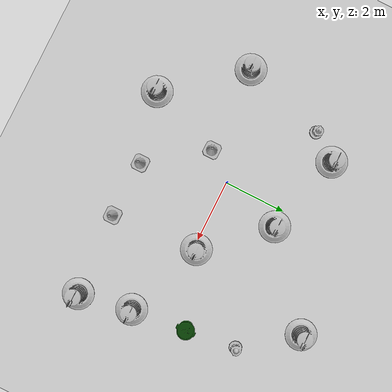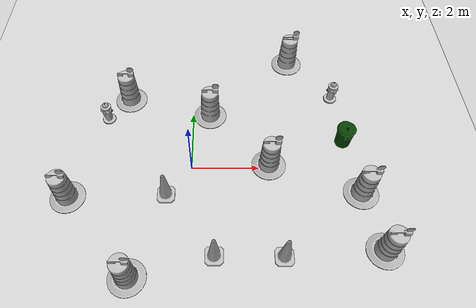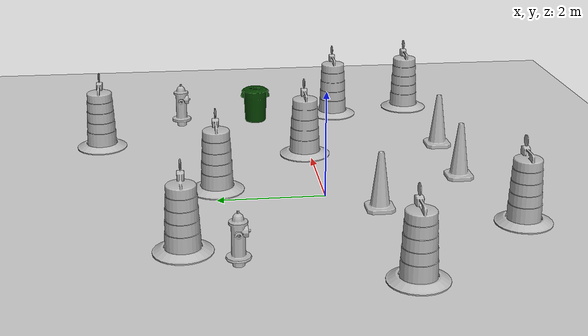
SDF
<sdf version="1.7">
 <world name="default">
  <light name="sun" type="directional">
   <pose>0 0 10 0 -0 0</pose>
   <diffuse>0.8 0.8 0.8 1</diffuse>
   <specular>0.2 0.2 0.2 1</specular>
   <attenuation>
    <range>1000</range>
    <constant>0.9</constant>
    <linear>0.01</linear>
    <quadratic>0.001</quadratic>
   </attenuation>
   <direction>-0.5 0.1 -0.9</direction>
   <spot><inner_angle>0</inner_angle><outer_angle>0</outer_angle><falloff>0</falloff></spot>
  </light>
  <model name="ground_plane">
   <static>1</static>
   <link name="link">
    <collision name="collision">
     <geometry><plane><normal>0 0 1</normal><size>100 100</size></plane></geometry>
     <surface><friction><ode><mu>100</mu><mu2>50</mu2></ode></friction></surface>
    </collision>
    <visual name="visual">
     <cast_shadows>0</cast_shadows>
     <geometry><plane><normal>0 0 1</normal><size>100 100</size></plane></geometry>
     <material>
      <script><uri>file://media/materials/scripts/gazebo.material</uri><name>Gazebo/Grey</name></script>
     </material>
    </visual>
   </link>
  </model>
  <gravity>0 0 -9.8</gravity>
  <magnetic_field>6e-06 2.3e-05 -4.2e-05</magnetic_field>
  <atmosphere type="adiabatic"/>
  <physics type="ode">
   <max_step_size>0.001</max_step_size>
   <real_time_factor>1</real_time_factor>
   <real_time_update_rate>1000</real_time_update_rate>
  </physics>
  <scene><ambient>0.4 0.4 0.4 1</ambient><background>0.7 0.7 0.7 1</background><shadows>1</shadows></scene>
  <audio><device>default</device></audio>
  <spherical_coordinates>
   <surface_model>EARTH_WGS84</surface_model>
   <latitude_deg>0</latitude_deg>
   <longitude_deg>0</longitude_deg>
   <elevation>0</elevation>
   <heading_deg>0</heading_deg>
  </spherical_coordinates>
  <model name="Construction Cone">
   <link name="link">
    <collision name="collision">
     <geometry>
      <mesh><scale>10 10 10</scale><uri>model://construction_cone/meshes/construction_cone.dae</uri></mesh>
     </geometry>
    </collision>
    <visual name="visual">
     <geometry>
      <mesh><scale>10 10 10</scale><uri>model://construction_cone/meshes/construction_cone.dae</uri></mesh>
     </geometry>
    </visual>
    <inertial>
     <inertia><ixx>1</ixx><ixy>0</ixy><ixz>0</ixz><iyy>1</iyy><iyz>0</iyz><izz>1</izz></inertia>
     <mass>1</mass>
    </inertial>
   </link>
   <pose>-0.712743 -0.878259 0 -0 -0 -0</pose>
  </model>
  <model name="Construction Cone_0">
   <link name="link">
    <collision name="collision">
     <geometry>
      <mesh><scale>10 10 10</scale><uri>model://construction_cone/meshes/construction_cone.dae</uri></mesh>
     </geometry>
    </collision>
    <visual name="visual">
     <geometry>
      <mesh><scale>10 10 10</scale><uri>model://construction_cone/meshes/construction_cone.dae</uri></mesh>
     </geometry>
    </visual>
    <inertial>
     <inertia><ixx>1</ixx><ixy>0</ixy><ixz>0</ixz><iyy>1</iyy><iyz>0</iyz><izz>1</izz></inertia>
     <mass>1</mass>
    </inertial>
   </link>
   <pose>0.670139 -2.69678 -0 0 -1e-06 0</pose>
  </model>
  <model name="Construction Barrel">
   <link name="link">
    <inertial>
     <pose>0 0 0.4 0 -0 0</pose>
     <mass>500</mass>
     <inertia><ixx>51.2096</ixx><iyy>51.2096</iyy><izz>25</izz><ixy>0</ixy><ixz>0</ixz><iyz>0</iyz></inertia>
    </inertial>
    <collision name="collision">
     <geometry><mesh><uri>model://construction_barrel/meshes/construction_barrel.dae</uri></mesh></geometry>
    </collision>
    <visual name="visual">
     <geometry><mesh><uri>model://construction_barrel/meshes/construction_barrel.dae</uri></mesh></geometry>
    </visual>
   </link>
   <pose>-2.08457 2.64608 0 1e-06 1e-06 -4e-05</pose>
  </model>
  <model name="Construction Barrel_0">
   <link name="link">
    <inertial>
     <pose>0 0 0.4 0 -0 0</pose>
     <mass>500</mass>
     <inertia><ixx>51.2096</ixx><iyy>51.2096</iyy><izz>25</izz><ixy>0</ixy><ixz>0</ixz><iyz>0</iyz></inertia>
    </inertial>
    <collision name="collision">
     <geometry><mesh><uri>model://construction_barrel/meshes/construction_barrel.dae</uri></mesh></geometry>
    </collision>
    <visual name="visual">
     <geometry><mesh><uri>model://construction_barrel/meshes/construction_barrel.dae</uri></mesh></geometry>
    </visual>
   </link>
   <pose>0.536948 1.97216 -2e-06 1e-06 8e-06 -2.7e-05</pose>
  </model>
  <model name="Construction Barrel_1">
   <link name="link">
    <inertial>
     <pose>0 0 0.4 0 -0 0</pose>
     <mass>500</mass>
     <inertia><ixx>51.2096</ixx><iyy>51.2096</iyy><izz>25</izz><ixy>0</ixy><ixz>0</ixz><iyz>0</iyz></inertia>
    </inertial>
    <collision name="collision">
     <geometry><mesh><uri>model://construction_barrel/meshes/construction_barrel.dae</uri></mesh></geometry>
    </collision>
    <visual name="visual">
     <geometry><mesh><uri>model://construction_barrel/meshes/construction_barrel.dae</uri></mesh></geometry>
    </visual>
   </link>
   <pose>5.21474 -2.57749 0 0 0 -3.1e-05</pose>
  </model>
  <model name="fire_hydrant">
   <static>1</static>
   <link name="link">
    <collision name="collision">
     <geometry><mesh><uri>model://fire_hydrant/meshes/fire_hydrant.dae</uri></mesh></geometry>
    </collision>
    <visual name="visual">
     <geometry><mesh><uri>model://fire_hydrant/meshes/fire_hydrant.dae</uri></mesh></geometry>
    </visual>
   </link>
   <pose>-2.67363 1.77455 0 0 -0 0</pose>
  </model>
  <model name="Construction Cone_1">
   <link name="link">
    <collision name="collision">
     <geometry>
      <mesh><scale>10 10 10</scale><uri>model://construction_cone/meshes/construction_cone.dae</uri></mesh>
     </geometry>
    </collision>
    <visual name="visual">
     <geometry>
      <mesh><scale>10 10 10</scale><uri>model://construction_cone/meshes/construction_cone.dae</uri></mesh>
     </geometry>
    </visual>
    <inertial>
     <inertia><ixx>1</ixx><ixy>0</ixy><ixz>0</ixz><iyy>1</iyy><iyz>0</iyz><izz>1</izz></inertia>
     <mass>1</mass>
    </inertial>
   </link>
   <pose>2.52271 -2.72871 -0 0 -1e-06 0</pose>
  </model>
  <model name="Construction Barrel_2">
   <link name="link">
    <inertial>
     <pose>0 0 0.4 0 -0 0</pose>
     <mass>500</mass>
     <inertia><ixx>51.2096</ixx><iyy>51.2096</iyy><izz>25</izz><ixy>0</ixy><ixz>0</ixz><iyz>0</iyz></inertia>
    </inertial>
    <collision name="collision">
     <geometry><mesh><uri>model://construction_barrel/meshes/construction_barrel.dae</uri></mesh></geometry>
    </collision>
    <visual name="visual">
     <geometry><mesh><uri>model://construction_barrel/meshes/construction_barrel.dae</uri></mesh></geometry>
    </visual>
   </link>
   <pose>4.89228 -0.858138 -0 1e-06 -1e-06 -2.3e-05</pose>
  </model>
  <model name="fire_hydrant_0">
   <static>1</static>
   <link name="link">
    <collision name="collision">
     <geometry><mesh><uri>model://fire_hydrant/meshes/fire_hydrant.dae</uri></mesh></geometry>
    </collision>
    <visual name="visual">
     <geometry><mesh><uri>model://fire_hydrant/meshes/fire_hydrant.dae</uri></mesh></geometry>
    </visual>
   </link>
   <pose>4.46243 2.57778 0 0 -0 0</pose>
  </model>
  <model name="first_2015_trash_can">
   <link name="link">
    <inertial>
     <pose>0 0 0.3683 0 -0 0</pose>
     <mass>4.83076</mass>
     <inertia>
      <ixx>0.281534</ixx>
      <ixy>0</ixy>
      <ixz>0</ixz>
      <iyy>0.281534</iyy>
      <iyz>0</iyz>
      <izz>0.126223</izz>
     </inertia>
    </inertial>
    <visual name="visual">
     <geometry><mesh><uri>model://first_2015_trash_can/meshes/trash_can.dae</uri></mesh></geometry>
    </visual>
    <collision name="collision">
     <geometry><mesh><uri>model://first_2015_trash_can/meshes/trash_can.dae</uri></mesh></geometry>
    </collision>
   </link>
   <pose>4.63103 0.929777 2e-06 -2.5e-05 1.9e-05 -0.000586</pose>
  </model>
  <model name="Construction Barrel_3">
   <link name="link">
    <inertial>
     <pose>0 0 0.4 0 -0 0</pose>
     <mass>500</mass>
     <inertia><ixx>51.2096</ixx><iyy>51.2096</iyy><izz>25</izz><ixy>0</ixy><ixz>0</ixz><iyz>0</iyz></inertia>
    </inertial>
    <collision name="collision">
     <geometry><mesh><uri>model://construction_barrel/meshes/construction_barrel.dae</uri></mesh></geometry>
    </collision>
    <visual name="visual">
     <geometry><mesh><uri>model://construction_barrel/meshes/construction_barrel.dae</uri></mesh></geometry>
    </visual>
   </link>
   <pose>2.29286 0.101912 -2e-06 -6e-06 -4e-06 -1.2e-05</pose>
  </model>
  <model name="Construction Barrel_4">
   <link name="link">
    <inertial>
     <pose>0 0 0.4 0 -0 0</pose>
     <mass>500</mass>
     <inertia><ixx>51.2096</ixx><iyy>51.2096</iyy><izz>25</izz><ixy>0</ixy><ixz>0</ixz><iyz>0</iyz></inertia>
    </inertial>
    <collision name="collision">
     <geometry><mesh><uri>model://construction_barrel/meshes/construction_barrel.dae</uri></mesh></geometry>
    </collision>
    <visual name="visual">
     <geometry><mesh><uri>model://construction_barrel/meshes/construction_barrel.dae</uri></mesh></geometry>
    </visual>
   </link>
   <pose>3.18847 4.24945 -2e-06 1e-06 8e-06 -1e-05</pose>
  </model>
  <model name="Construction Barrel_5">
   <link name="link">
    <inertial>
     <pose>0 0 0.4 0 -0 0</pose>
     <mass>500</mass>
     <inertia><ixx>51.2096</ixx><iyy>51.2096</iyy><izz>25</izz><ixy>0</ixy><ixz>0</ixz><iyz>0</iyz></inertia>
    </inertial>
    <collision name="collision">
     <geometry><mesh><uri>model://construction_barrel/meshes/construction_barrel.dae</uri></mesh></geometry>
    </collision>
    <visual name="visual">
     <geometry><mesh><uri>model://construction_barrel/meshes/construction_barrel.dae</uri></mesh></geometry>
    </visual>
   </link>
   <pose>-1.57379 -3.25059 -4e-06 -3e-06 -1e-05 -6e-06</pose>
  </model>
  <model name="Construction Barrel_6">
   <link name="link">
    <inertial>
     <pose>0 0 0.4 0 -0 0</pose>
     <mass>500</mass>
     <inertia><ixx>51.2096</ixx><iyy>51.2096</iyy><izz>25</izz><ixy>0</ixy><ixz>0</ixz><iyz>0</iyz></inertia>
    </inertial>
    <collision name="collision">
     <geometry><mesh><uri>model://construction_barrel/meshes/construction_barrel.dae</uri></mesh></geometry>
    </collision>
    <visual name="visual">
     <geometry><mesh><uri>model://construction_barrel/meshes/construction_barrel.dae</uri></mesh></geometry>
    </visual>
   </link>
   <pose>-3.5272 -0.936534 -1e-06 3e-06 1e-05 -1.7e-05</pose>
  </model>
 </world>
</sdf>
